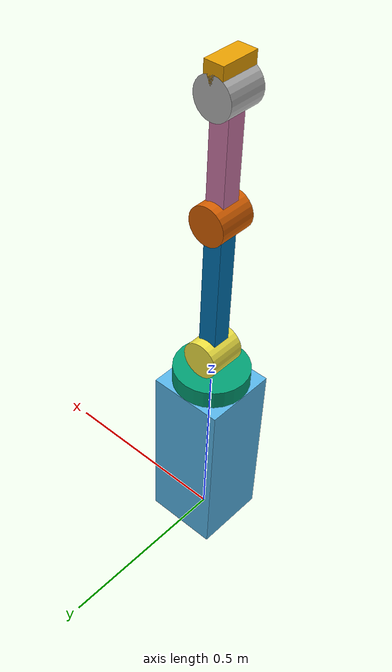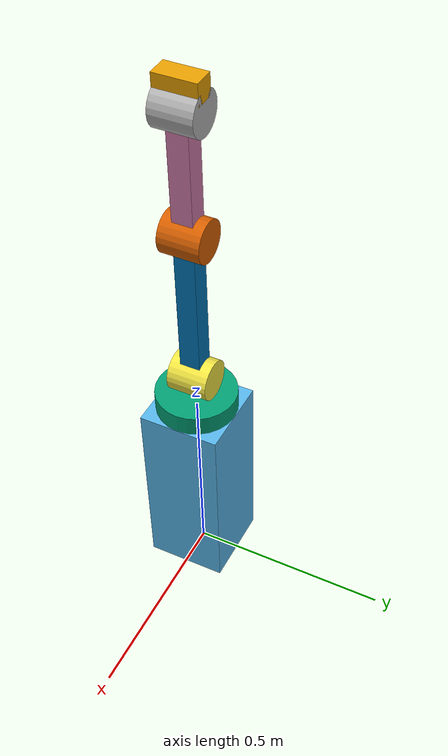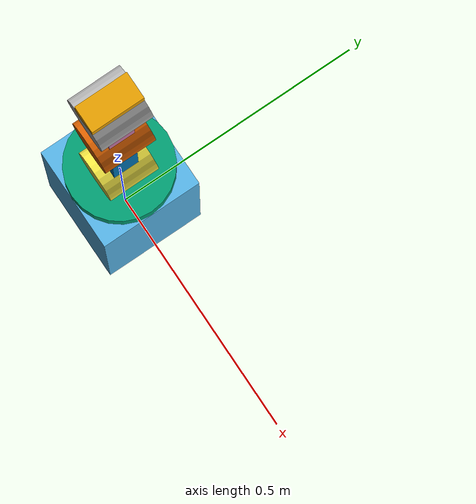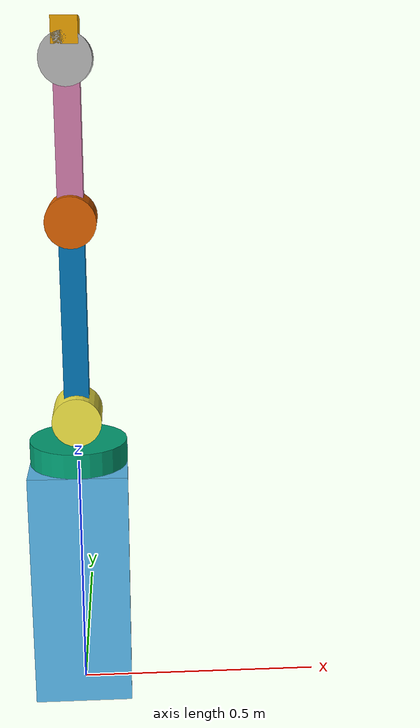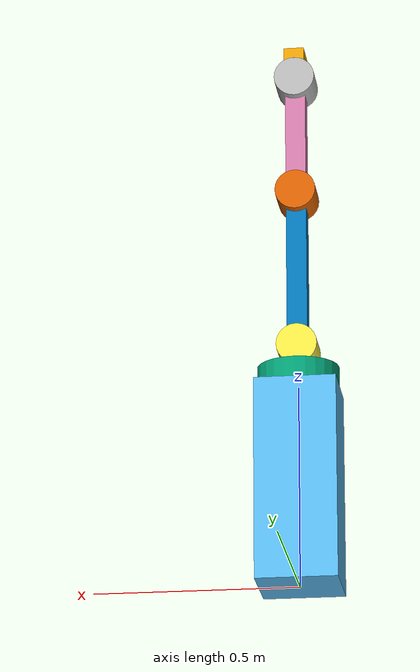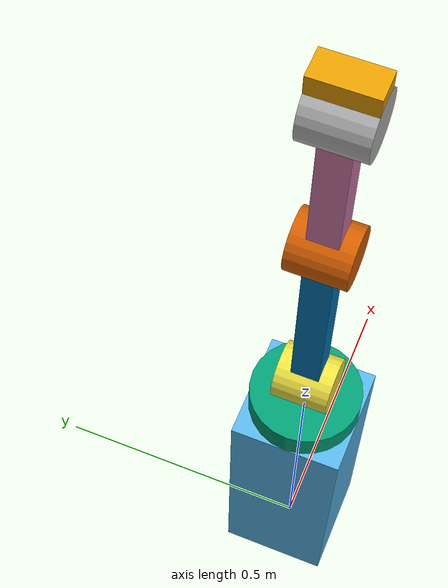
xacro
<?xml version="1.0"?>

<robot xmlns:xacro="http://www.ros.org/wiki/xacro" name="my_arm_description">

<xacro:property name="robot_stand_width" value="0.2"/>
<xacro:property name="robot_stand_length" value="0.2"/>
<xacro:property name="robot_stand_height" value="0.5"/>

<xacro:property name="appendage_length" value="0.05"/>
<xacro:property name="appendage_width" value="0.05"/>

<xacro:macro name="robot_stand" params="parent_joint">
    <link name="robot_stand_link">
        <visual>
            <origin xyz="0 0 0" rpy="0 0 0"/>
            <geometry>
                <box size="${robot_stand_width} ${robot_stand_length} ${robot_stand_height}"/>
            </geometry>
        </visual>
        <collision>
            <origin xyz="0 0 0" rpy="0 0 0"/>
            <geometry>
                <box size="${robot_stand_width} ${robot_stand_length} ${robot_stand_height}"/>
            </geometry>
        </collision>
    </link>
    <joint name="robot_stand_joint" type="fixed">
        <origin xyz="0 0 ${robot_stand_height / 2}" rpy="0 0 0"/>
        <parent link="${parent_joint}"/>
        <child link="robot_stand_link"/>
    </joint>
</xacro:macro>

<xacro:macro name="standard_joint" params="joint_name parent_link radius length joint_height joint_pitch joint_roll joint_yaw">
    <link name="${joint_name}_link">
        <visual>
            <origin xyz="0 0 0" rpy="0 0 0"/>
            <geometry>
                <cylinder radius="${radius}" length="${length}"/>
            </geometry>
        </visual>
        <collision>
            <origin xyz="0 0 0" rpy="0 0 0"/>
            <geometry>
                <cylinder radius="${radius}" length="${length}"/>
            </geometry>
        </collision>
    </link>
    <joint name="${joint_name}_link_joint" type="revolute">

        <origin xyz="0 0 ${joint_height}" rpy="${joint_pitch} ${joint_roll} ${joint_yaw}"/>
        <axis xyz="0 0 1"/>

        <limit effort="30" velocity="1.0" lower="-0.778" upper="0.778" />
        <parent link="${parent_link}"/>
        <child link="${joint_name}_link"/>
    </joint>
</xacro:macro>

<xacro:macro name="standard_appendage" params="parent_link length appendage_roll appendage_pitch appendage_yaw">
    <link name="${length}_link">
         <visual>
            <origin xyz="0 0 0" rpy="0 0 0"/>
            <geometry>
                <box size="${appendage_width} ${appendage_length} ${length}"/>
            </geometry>
        </visual>
        <collision>
            <origin xyz="0 0 0" rpy="0 0 0"/>
            <geometry>
                <box size="${appendage_width} ${appendage_length} ${length}"/>
            </geometry>
        </collision>
    </link>

    <joint name="${length}_link_joint" type="fixed">
        <xacro:unless value="${length == '0.1'}">
            <origin xyz="0 ${length / 2} 0" rpy="${appendage_roll} ${appendage_pitch} ${appendage_yaw}"/>
        </xacro:unless>
        <xacro:if value="${length == '0.1'}">
            <origin xyz="0 0 0" rpy="${appendage_roll} ${appendage_pitch} ${appendage_yaw}"/>
        </xacro:if>
        <parent link="${parent_link}"/>
        <child link="${length}_link"/>
    </joint>

</xacro:macro>

    <link name="world"/>

    <xacro:robot_stand parent_joint="world"/>
    <xacro:standard_joint joint_name="waist" parent_link="robot_stand_link" radius="0.1" length="0.1" joint_height="${robot_stand_height / 2}" joint_pitch="0" joint_roll="0" joint_yaw="0"/>
    <xacro:standard_joint joint_name="shoulder" parent_link="waist_link" radius="0.05" length="0.1" joint_height="${0.1}" joint_pitch="1.5707" joint_roll="0" joint_yaw="0"/>
    <xacro:standard_appendage parent_link="shoulder_link" length="0.4" appendage_roll="0" appendage_pitch="1.5707" appendage_yaw="1.5707"/>
    <xacro:standard_joint joint_name="elbow" parent_link="0.4_link" radius="0.05" length="0.1" joint_height="${0.2}" joint_pitch="1.5707" joint_roll="0" joint_yaw="-1.5707"/>
    <xacro:standard_appendage parent_link="elbow_link" length="0.3" appendage_roll="0" appendage_pitch="1.5707" appendage_yaw="1.5707"/>
    <xacro:standard_joint joint_name="wrist" parent_link="0.3_link" radius="0.05" length="0.1" joint_height="${0.15}" joint_pitch="1.5707" joint_roll="0" joint_yaw="-1.5707"/>
    <xacro:standard_appendage parent_link="wrist_link" length="0.1" appendage_roll="0" appendage_pitch="0" appendage_yaw="0"/>
</robot>
